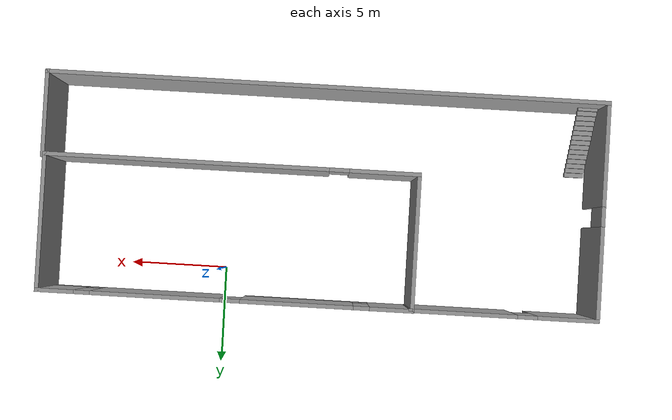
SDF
<?xml version='1.0'?>
<sdf version='1.4'>
  <model name='drone_testing'>
    <link name='Stairs_0'>
      <visual name='Stairs_0_Visual_0'>
        <pose>-18.2276 -5.96559 0.083333 0 -0 0</pose>
        <geometry>
          <box>
            <size>1 0.233333 0.166667</size>
          </box>
        </geometry>
        <material>
          <script>
            <uri>file://media/materials/scripts/gazebo.material</uri>
            <name>Gazebo/Grey</name>
          </script>
        </material>
      </visual>
      <collision name='Stairs_0_Collision_0'>
        <geometry>
          <box>
            <size>1 0.233333 0.166667</size>
          </box>
        </geometry>
        <pose>-18.2276 -5.96559 0.083333 0 -0 0</pose>
      </collision>
      <visual name='Stairs_0_Visual_1'>
        <pose>-18.2276 -6.19893 0.25 0 -0 0</pose>
        <geometry>
          <box>
            <size>1 0.233335 0.166668</size>
          </box>
        </geometry>
        <material>
          <script>
            <uri>file://media/materials/scripts/gazebo.material</uri>
            <name>Gazebo/Grey</name>
          </script>
        </material>
      </visual>
      <collision name='Stairs_0_Collision_1'>
        <geometry>
          <box>
            <size>1 0.233335 0.166668</size>
          </box>
        </geometry>
        <pose>-18.2276 -6.19893 0.25 0 -0 0</pose>
      </collision>
      <visual name='Stairs_0_Visual_2'>
        <pose>-18.2276 -6.43226 0.416667 0 -0 0</pose>
        <geometry>
          <box>
            <size>1 0.233335 0.166668</size>
          </box>
        </geometry>
        <material>
          <script>
            <uri>file://media/materials/scripts/gazebo.material</uri>
            <name>Gazebo/Grey</name>
          </script>
        </material>
      </visual>
      <collision name='Stairs_0_Collision_2'>
        <geometry>
          <box>
            <size>1 0.233335 0.166668</size>
          </box>
        </geometry>
        <pose>-18.2276 -6.43226 0.416667 0 -0 0</pose>
      </collision>
      <visual name='Stairs_0_Visual_3'>
        <pose>-18.2276 -6.66559 0.583333 0 -0 0</pose>
        <geometry>
          <box>
            <size>1 0.233335 0.166668</size>
          </box>
        </geometry>
        <material>
          <script>
            <uri>file://media/materials/scripts/gazebo.material</uri>
            <name>Gazebo/Grey</name>
          </script>
        </material>
      </visual>
      <collision name='Stairs_0_Collision_3'>
        <geometry>
          <box>
            <size>1 0.233335 0.166668</size>
          </box>
        </geometry>
        <pose>-18.2276 -6.66559 0.583333 0 -0 0</pose>
      </collision>
      <visual name='Stairs_0_Visual_4'>
        <pose>-18.2276 -6.89893 0.75 0 -0 0</pose>
        <geometry>
          <box>
            <size>1 0.233335 0.166668</size>
          </box>
        </geometry>
        <material>
          <script>
            <uri>file://media/materials/scripts/gazebo.material</uri>
            <name>Gazebo/Grey</name>
          </script>
        </material>
      </visual>
      <collision name='Stairs_0_Collision_4'>
        <geometry>
          <box>
            <size>1 0.233335 0.166668</size>
          </box>
        </geometry>
        <pose>-18.2276 -6.89893 0.75 0 -0 0</pose>
      </collision>
      <visual name='Stairs_0_Visual_5'>
        <pose>-18.2276 -7.13226 0.916667 0 -0 0</pose>
        <geometry>
          <box>
            <size>1 0.233335 0.166668</size>
          </box>
        </geometry>
        <material>
          <script>
            <uri>file://media/materials/scripts/gazebo.material</uri>
            <name>Gazebo/Grey</name>
          </script>
        </material>
      </visual>
      <collision name='Stairs_0_Collision_5'>
        <geometry>
          <box>
            <size>1 0.233335 0.166668</size>
          </box>
        </geometry>
        <pose>-18.2276 -7.13226 0.916667 0 -0 0</pose>
      </collision>
      <visual name='Stairs_0_Visual_6'>
        <pose>-18.2276 -7.36559 1.08333 0 -0 0</pose>
        <geometry>
          <box>
            <size>1 0.233335 0.166668</size>
          </box>
        </geometry>
        <material>
          <script>
            <uri>file://media/materials/scripts/gazebo.material</uri>
            <name>Gazebo/Grey</name>
          </script>
        </material>
      </visual>
      <collision name='Stairs_0_Collision_6'>
        <geometry>
          <box>
            <size>1 0.233335 0.166668</size>
          </box>
        </geometry>
        <pose>-18.2276 -7.36559 1.08333 0 -0 0</pose>
      </collision>
      <visual name='Stairs_0_Visual_7'>
        <pose>-18.2276 -7.59893 1.25 0 -0 0</pose>
        <geometry>
          <box>
            <size>1 0.233335 0.166668</size>
          </box>
        </geometry>
        <material>
          <script>
            <uri>file://media/materials/scripts/gazebo.material</uri>
            <name>Gazebo/Grey</name>
          </script>
        </material>
      </visual>
      <collision name='Stairs_0_Collision_7'>
        <geometry>
          <box>
            <size>1 0.233335 0.166668</size>
          </box>
        </geometry>
        <pose>-18.2276 -7.59893 1.25 0 -0 0</pose>
      </collision>
      <visual name='Stairs_0_Visual_8'>
        <pose>-18.2276 -7.83226 1.41667 0 -0 0</pose>
        <geometry>
          <box>
            <size>1 0.233335 0.166668</size>
          </box>
        </geometry>
        <material>
          <script>
            <uri>file://media/materials/scripts/gazebo.material</uri>
            <name>Gazebo/Grey</name>
          </script>
        </material>
      </visual>
      <collision name='Stairs_0_Collision_8'>
        <geometry>
          <box>
            <size>1 0.233335 0.166668</size>
          </box>
        </geometry>
        <pose>-18.2276 -7.83226 1.41667 0 -0 0</pose>
      </collision>
      <visual name='Stairs_0_Visual_9'>
        <pose>-18.2276 -8.06559 1.58333 0 -0 0</pose>
        <geometry>
          <box>
            <size>1 0.233335 0.166668</size>
          </box>
        </geometry>
        <material>
          <script>
            <uri>file://media/materials/scripts/gazebo.material</uri>
            <name>Gazebo/Grey</name>
          </script>
        </material>
      </visual>
      <collision name='Stairs_0_Collision_9'>
        <geometry>
          <box>
            <size>1 0.233335 0.166668</size>
          </box>
        </geometry>
        <pose>-18.2276 -8.06559 1.58333 0 -0 0</pose>
      </collision>
      <visual name='Stairs_0_Visual_10'>
        <pose>-18.2276 -8.29893 1.75 0 -0 0</pose>
        <geometry>
          <box>
            <size>1 0.233335 0.166668</size>
          </box>
        </geometry>
        <material>
          <script>
            <uri>file://media/materials/scripts/gazebo.material</uri>
            <name>Gazebo/Grey</name>
          </script>
        </material>
      </visual>
      <collision name='Stairs_0_Collision_10'>
        <geometry>
          <box>
            <size>1 0.233335 0.166668</size>
          </box>
        </geometry>
        <pose>-18.2276 -8.29893 1.75 0 -0 0</pose>
      </collision>
      <visual name='Stairs_0_Visual_11'>
        <pose>-18.2276 -8.53226 1.91667 0 -0 0</pose>
        <geometry>
          <box>
            <size>1 0.233335 0.166668</size>
          </box>
        </geometry>
        <material>
          <script>
            <uri>file://media/materials/scripts/gazebo.material</uri>
            <name>Gazebo/Grey</name>
          </script>
        </material>
      </visual>
      <collision name='Stairs_0_Collision_11'>
        <geometry>
          <box>
            <size>1 0.233335 0.166668</size>
          </box>
        </geometry>
        <pose>-18.2276 -8.53226 1.91667 0 -0 0</pose>
      </collision>
      <visual name='Stairs_0_Visual_12'>
        <pose>-18.2276 -8.76559 2.08333 0 -0 0</pose>
        <geometry>
          <box>
            <size>1 0.233335 0.166668</size>
          </box>
        </geometry>
        <material>
          <script>
            <uri>file://media/materials/scripts/gazebo.material</uri>
            <name>Gazebo/Grey</name>
          </script>
        </material>
      </visual>
      <collision name='Stairs_0_Collision_12'>
        <geometry>
          <box>
            <size>1 0.233335 0.166668</size>
          </box>
        </geometry>
        <pose>-18.2276 -8.76559 2.08333 0 -0 0</pose>
      </collision>
      <visual name='Stairs_0_Visual_13'>
        <pose>-18.2276 -8.99893 2.25 0 -0 0</pose>
        <geometry>
          <box>
            <size>1 0.233335 0.166668</size>
          </box>
        </geometry>
        <material>
          <script>
            <uri>file://media/materials/scripts/gazebo.material</uri>
            <name>Gazebo/Grey</name>
          </script>
        </material>
      </visual>
      <collision name='Stairs_0_Collision_13'>
        <geometry>
          <box>
            <size>1 0.233335 0.166668</size>
          </box>
        </geometry>
        <pose>-18.2276 -8.99893 2.25 0 -0 0</pose>
      </collision>
      <visual name='Stairs_0_Visual_14'>
        <pose>-18.2276 -9.23226 2.41667 0 -0 0</pose>
        <geometry>
          <box>
            <size>1 0.233335 0.166668</size>
          </box>
        </geometry>
        <material>
          <script>
            <uri>file://media/materials/scripts/gazebo.material</uri>
            <name>Gazebo/Grey</name>
          </script>
        </material>
      </visual>
      <collision name='Stairs_0_Collision_14'>
        <geometry>
          <box>
            <size>1 0.233335 0.166668</size>
          </box>
        </geometry>
        <pose>-18.2276 -9.23226 2.41667 0 -0 0</pose>
      </collision>
    </link>
    <link name='Wall_0'>
      <pose>-0.3305 1.545 0 0 -0 0</pose>
      <visual name='Wall_0_Visual_0'>
        <pose>-8.34565 0 2 0 -0 0</pose>
        <geometry>
          <box>
            <size>2.22137 0.2 4</size>
          </box>
        </geometry>
        <material>
          <script>
            <uri>file://media/materials/scripts/gazebo.material</uri>
            <name>Gazebo/Grey</name>
          </script>
        </material>
      </visual>
      <collision name='Wall_0_Collision_0'>
        <geometry>
          <box>
            <size>2.22137 0.2 4</size>
          </box>
        </geometry>
        <pose>-8.34565 0 2 0 -0 0</pose>
      </collision>
      <visual name='Wall_0_Visual_1'>
        <pose>3.47346 0 2 0 -0 0</pose>
        <geometry>
          <box>
            <size>6.47866 0.2 4</size>
          </box>
        </geometry>
        <material>
          <script>
            <uri>file://media/materials/scripts/gazebo.material</uri>
            <name>Gazebo/Grey</name>
          </script>
        </material>
      </visual>
      <collision name='Wall_0_Collision_1'>
        <geometry>
          <box>
            <size>6.47866 0.2 4</size>
          </box>
        </geometry>
        <pose>3.47346 0 2 0 -0 0</pose>
      </collision>
      <visual name='Wall_0_Visual_2'>
        <pose>-4.00042 0 0.25 0 -0 0</pose>
        <geometry>
          <box>
            <size>6.46909 0.2 0.5</size>
          </box>
        </geometry>
        <material>
          <script>
            <uri>file://media/materials/scripts/gazebo.material</uri>
            <name>Gazebo/Grey</name>
          </script>
        </material>
      </visual>
      <collision name='Wall_0_Collision_2'>
        <geometry>
          <box>
            <size>6.46909 0.2 0.5</size>
          </box>
        </geometry>
        <pose>-4.00042 0 0.25 0 -0 0</pose>
      </collision>
      <visual name='Wall_0_Visual_3'>
        <pose>8.08456 0 0.25 0 -0 0</pose>
        <geometry>
          <box>
            <size>2.74354 0.2 0.5</size>
          </box>
        </geometry>
        <material>
          <script>
            <uri>file://media/materials/scripts/gazebo.material</uri>
            <name>Gazebo/Grey</name>
          </script>
        </material>
      </visual>
      <collision name='Wall_0_Collision_3'>
        <geometry>
          <box>
            <size>2.74354 0.2 0.5</size>
          </box>
        </geometry>
        <pose>8.08456 0 0.25 0 -0 0</pose>
      </collision>
      <visual name='Wall_0_Visual_4'>
        <pose>-3.60042 0 2.25 0 -0 0</pose>
        <geometry>
          <box>
            <size>5.66909 0.2 3.5</size>
          </box>
        </geometry>
        <material>
          <script>
            <uri>file://media/materials/scripts/gazebo.material</uri>
            <name>Gazebo/Grey</name>
          </script>
        </material>
      </visual>
      <collision name='Wall_0_Collision_4'>
        <geometry>
          <box>
            <size>5.66909 0.2 3.5</size>
          </box>
        </geometry>
        <pose>-3.60042 0 2.25 0 -0 0</pose>
      </collision>
      <visual name='Wall_0_Visual_5'>
        <pose>-3.60042 0 2.25 0 -0 0</pose>
        <geometry>
          <box>
            <size>5.66909 0.2 3.5</size>
          </box>
        </geometry>
        <material>
          <script>
            <uri>file://media/materials/scripts/gazebo.material</uri>
            <name>Gazebo/Grey</name>
          </script>
        </material>
      </visual>
      <collision name='Wall_0_Collision_5'>
        <geometry>
          <box>
            <size>5.66909 0.2 3.5</size>
          </box>
        </geometry>
        <pose>-3.60042 0 2.25 0 -0 0</pose>
      </collision>
      <visual name='Wall_0_Visual_6'>
        <pose>8.48456 0 2.25 0 -0 0</pose>
        <geometry>
          <box>
            <size>1.94354 0.2 3.5</size>
          </box>
        </geometry>
        <material>
          <script>
            <uri>file://media/materials/scripts/gazebo.material</uri>
            <name>Gazebo/Grey</name>
          </script>
        </material>
      </visual>
      <collision name='Wall_0_Collision_6'>
        <geometry>
          <box>
            <size>1.94354 0.2 3.5</size>
          </box>
        </geometry>
        <pose>8.48456 0 2.25 0 -0 0</pose>
      </collision>
      <visual name='Wall_0_Visual_7'>
        <pose>-6.83496 0 2.65 0 -0 0</pose>
        <geometry>
          <box>
            <size>0.8 0.2 2.7</size>
          </box>
        </geometry>
        <material>
          <script>
            <uri>file://media/materials/scripts/gazebo.material</uri>
            <name>Gazebo/Grey</name>
          </script>
        </material>
      </visual>
      <collision name='Wall_0_Collision_7'>
        <geometry>
          <box>
            <size>0.8 0.2 2.7</size>
          </box>
        </geometry>
        <pose>-6.83496 0 2.65 0 -0 0</pose>
      </collision>
      <visual name='Wall_0_Visual_8'>
        <pose>7.11279 0 2.65 0 -0 0</pose>
        <geometry>
          <box>
            <size>0.8 0.2 2.7</size>
          </box>
        </geometry>
        <material>
          <script>
            <uri>file://media/materials/scripts/gazebo.material</uri>
            <name>Gazebo/Grey</name>
          </script>
        </material>
      </visual>
      <collision name='Wall_0_Collision_8'>
        <geometry>
          <box>
            <size>0.8 0.2 2.7</size>
          </box>
        </geometry>
        <pose>7.11279 0 2.65 0 -0 0</pose>
      </collision>
      <visual name='Wall_0_Visual_9'>
        <pose>-0.265871 0 3 0 -0 0</pose>
        <geometry>
          <box>
            <size>1 0.2 2</size>
          </box>
        </geometry>
        <material>
          <script>
            <uri>file://media/materials/scripts/gazebo.material</uri>
            <name>Gazebo/Grey</name>
          </script>
        </material>
      </visual>
      <collision name='Wall_0_Collision_9'>
        <geometry>
          <box>
            <size>1 0.2 2</size>
          </box>
        </geometry>
        <pose>-0.265871 0 3 0 -0 0</pose>
      </collision>
      <visual name='Wall_0_Visual_10'>
        <pose>-0.265871 0 3 0 -0 0</pose>
        <geometry>
          <box>
            <size>1 0.2 2</size>
          </box>
        </geometry>
        <material>
          <script>
            <uri>file://media/materials/scripts/gazebo.material</uri>
            <name>Gazebo/Grey</name>
          </script>
        </material>
      </visual>
      <collision name='Wall_0_Collision_10'>
        <geometry>
          <box>
            <size>1 0.2 2</size>
          </box>
        </geometry>
        <pose>-0.265871 0 3 0 -0 0</pose>
      </collision>
    </link>
    <link name='Wall_1'>
      <collision name='Wall_1_Collision'>
        <geometry>
          <box>
            <size>7.0004 0.2 4</size>
          </box>
        </geometry>
        <pose>0 0 2 0 -0 0</pose>
      </collision>
      <visual name='Wall_1_Visual'>
        <pose>0 0 2 0 -0 0</pose>
        <geometry>
          <box>
            <size>7.0004 0.2 4</size>
          </box>
        </geometry>
        <material>
          <script>
            <uri>file://media/materials/scripts/gazebo.material</uri>
            <name>Gazebo/Grey</name>
          </script>
        </material>
      </visual>
      <velocity_decay>
        <linear>0</linear>
        <angular>0</angular>
      </velocity_decay>
      <pose>9.02598 -1.85539 0 0 0 -1.5708</pose>
    </link>
    <link name='Wall_2'>
      <pose>-0.330369 -5.25578 0 0 -0 3.14159</pose>
      <visual name='Wall_2_Visual_0'>
        <pose>-2.3008 0 2 0 -0 0</pose>
        <geometry>
          <box>
            <size>14.3111 0.2 4</size>
          </box>
        </geometry>
        <material>
          <script>
            <uri>file://media/materials/scripts/gazebo.material</uri>
            <name>Gazebo/Grey</name>
          </script>
        </material>
      </visual>
      <collision name='Wall_2_Collision_0'>
        <geometry>
          <box>
            <size>14.3111 0.2 4</size>
          </box>
        </geometry>
        <pose>-2.3008 0 2 0 -0 0</pose>
      </collision>
      <visual name='Wall_2_Visual_1'>
        <pose>7.65553 0 2 0 -0 0</pose>
        <geometry>
          <box>
            <size>3.6016 0.2 4</size>
          </box>
        </geometry>
        <material>
          <script>
            <uri>file://media/materials/scripts/gazebo.material</uri>
            <name>Gazebo/Grey</name>
          </script>
        </material>
      </visual>
      <collision name='Wall_2_Collision_1'>
        <geometry>
          <box>
            <size>3.6016 0.2 4</size>
          </box>
        </geometry>
        <pose>7.65553 0 2 0 -0 0</pose>
      </collision>
      <visual name='Wall_2_Visual_2'>
        <pose>5.35474 0 3 0 -0 0</pose>
        <geometry>
          <box>
            <size>1 0.2 2</size>
          </box>
        </geometry>
        <material>
          <script>
            <uri>file://media/materials/scripts/gazebo.material</uri>
            <name>Gazebo/Grey</name>
          </script>
        </material>
      </visual>
      <collision name='Wall_2_Collision_2'>
        <geometry>
          <box>
            <size>1 0.2 2</size>
          </box>
        </geometry>
        <pose>5.35474 0 3 0 -0 0</pose>
      </collision>
    </link>
    <link name='Wall_3'>
      <collision name='Wall_3_Collision'>
        <geometry>
          <box>
            <size>7.0004 0.2 4</size>
          </box>
        </geometry>
        <pose>0 0 2 0 -0 0</pose>
      </collision>
      <visual name='Wall_3_Visual'>
        <pose>0 0 2 0 -0 0</pose>
        <geometry>
          <box>
            <size>7.0004 0.2 4</size>
          </box>
        </geometry>
        <material>
          <script>
            <uri>file://media/materials/scripts/gazebo.material</uri>
            <name>Gazebo/Grey</name>
          </script>
        </material>
      </visual>
      <velocity_decay>
        <linear>0</linear>
        <angular>0</angular>
      </velocity_decay>
      <pose>-9.6867 -1.85558 0 0 -0 1.5708</pose>
    </link>
    <link name='Wall_5'>
      <pose>-14.2731 1.51976 0 0 -0 3.14159</pose>
      <visual name='Wall_5_Visual_0'>
        <pose>-2.04465 0 2 0 -0 0</pose>
        <geometry>
          <box>
            <size>5.41549 0.2 4</size>
          </box>
        </geometry>
        <material>
          <script>
            <uri>file://media/materials/scripts/gazebo.material</uri>
            <name>Gazebo/Grey</name>
          </script>
        </material>
      </visual>
      <collision name='Wall_5_Collision_0'>
        <geometry>
          <box>
            <size>5.41549 0.2 4</size>
          </box>
        </geometry>
        <pose>-2.04465 0 2 0 -0 0</pose>
      </collision>
      <visual name='Wall_5_Visual_1'>
        <pose>3.20775 0 2 0 -0 0</pose>
        <geometry>
          <box>
            <size>3.08929 0.2 4</size>
          </box>
        </geometry>
        <material>
          <script>
            <uri>file://media/materials/scripts/gazebo.material</uri>
            <name>Gazebo/Grey</name>
          </script>
        </material>
      </visual>
      <collision name='Wall_5_Collision_1'>
        <geometry>
          <box>
            <size>3.08929 0.2 4</size>
          </box>
        </geometry>
        <pose>3.20775 0 2 0 -0 0</pose>
      </collision>
      <visual name='Wall_5_Visual_2'>
        <pose>1.1631 0 3 0 -0 0</pose>
        <geometry>
          <box>
            <size>1 0.2 2</size>
          </box>
        </geometry>
        <material>
          <script>
            <uri>file://media/materials/scripts/gazebo.material</uri>
            <name>Gazebo/Grey</name>
          </script>
        </material>
      </visual>
      <collision name='Wall_5_Collision_2'>
        <geometry>
          <box>
            <size>1 0.2 2</size>
          </box>
        </geometry>
        <pose>1.1631 0 3 0 -0 0</pose>
      </collision>
    </link>
    <link name='Wall_6'>
      <pose>-18.9258 -3.92362 0 0 0 -1.57084</pose>
      <visual name='Wall_6_Visual_0'>
        <pose>-3.138 0 2 0 -0 0</pose>
        <geometry>
          <box>
            <size>4.8106 0.2 4</size>
          </box>
        </geometry>
        <material>
          <script>
            <uri>file://media/materials/scripts/gazebo.material</uri>
            <name>Gazebo/Grey</name>
          </script>
        </material>
      </visual>
      <collision name='Wall_6_Collision_0'>
        <geometry>
          <box>
            <size>4.8106 0.2 4</size>
          </box>
        </geometry>
        <pose>-3.138 0 2 0 -0 0</pose>
      </collision>
      <visual name='Wall_6_Visual_1'>
        <pose>2.9053 0 2 0 -0 0</pose>
        <geometry>
          <box>
            <size>5.27599 0.2 4</size>
          </box>
        </geometry>
        <material>
          <script>
            <uri>file://media/materials/scripts/gazebo.material</uri>
            <name>Gazebo/Grey</name>
          </script>
        </material>
      </visual>
      <collision name='Wall_6_Collision_1'>
        <geometry>
          <box>
            <size>5.27599 0.2 4</size>
          </box>
        </geometry>
        <pose>2.9053 0 2 0 -0 0</pose>
      </collision>
      <visual name='Wall_6_Visual_2'>
        <pose>-0.232698 0 3 0 -0 0</pose>
        <geometry>
          <box>
            <size>1 0.2 2</size>
          </box>
        </geometry>
        <material>
          <script>
            <uri>file://media/materials/scripts/gazebo.material</uri>
            <name>Gazebo/Grey</name>
          </script>
        </material>
      </visual>
      <collision name='Wall_6_Collision_2'>
        <geometry>
          <box>
            <size>1 0.2 2</size>
          </box>
        </geometry>
        <pose>-0.232698 0 3 0 -0 0</pose>
      </collision>
    </link>
    <link name='Wall_7'>
      <collision name='Wall_7_Collision'>
        <geometry>
          <box>
            <size>28.2539 0.2 4</size>
          </box>
        </geometry>
        <pose>0 0 2 0 -0 0</pose>
      </collision>
      <visual name='Wall_7_Visual'>
        <pose>0 0 2 0 -0 0</pose>
        <geometry>
          <box>
            <size>28.2539 0.2 4</size>
          </box>
        </geometry>
        <material>
          <script>
            <uri>file://media/materials/scripts/gazebo.material</uri>
            <name>Gazebo/Grey</name>
          </script>
        </material>
      </visual>
      <velocity_decay>
        <linear>0</linear>
        <angular>0</angular>
      </velocity_decay>
      <pose>-4.899 -9.367 0 0 -0 0</pose>
    </link>
    <link name='Wall_8'>
      <collision name='Wall_8_Collision'>
        <geometry>
          <box>
            <size>4.38715 0.2 4</size>
          </box>
        </geometry>
        <pose>0 0 2 0 -0 0</pose>
      </collision>
      <visual name='Wall_8_Visual'>
        <pose>0 0 2 0 -0 0</pose>
        <geometry>
          <box>
            <size>4.38715 0.2 4</size>
          </box>
        </geometry>
        <material>
          <script>
            <uri>file://media/materials/scripts/gazebo.material</uri>
            <name>Gazebo/Grey</name>
          </script>
        </material>
      </visual>
      <velocity_decay>
        <linear>0</linear>
        <angular>0</angular>
      </velocity_decay>
      <pose>9.12821 -7.27334 0 0 -0 1.5707</pose>
    </link>
    <static>1</static>
  </model>
</sdf>
